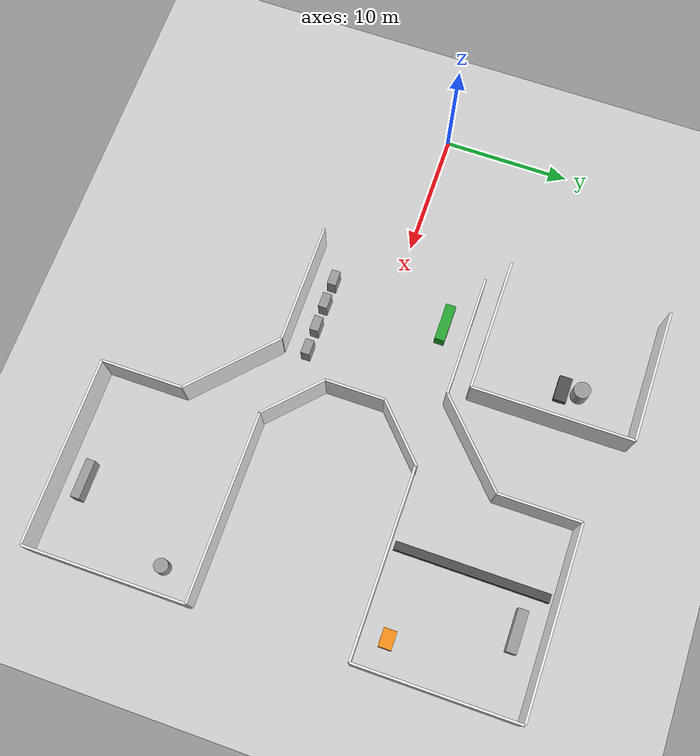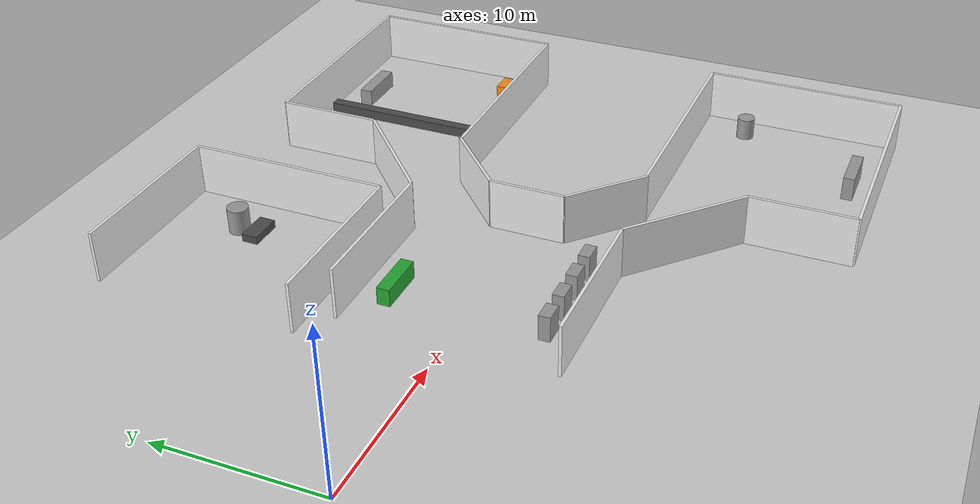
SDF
<sdf version="1.6">
 <world name="default">
  <include><uri>model://sun</uri></include>
  <include><uri>model://ground_plane</uri></include>
  <model name="wall_012">
   <static>true</static>
   <pose>15.250000 20.500000 1.600000 0 0 0.000000</pose>
   <link name="link">
    <collision name="collision">
     <geometry><box><size>10.500000 0.180000 3.200000</size></box></geometry>
    </collision>
    <visual name="visual">
     <geometry><box><size>10.500000 0.180000 3.200000</size></box></geometry>
     <material>
      <script><uri>file://media/materials/scripts/gazebo.material</uri><name>Gazebo/White</name></script>
     </material>
    </visual>
   </link>
  </model>
  <model name="wall_013">
   <static>true</static>
   <pose>20.500000 14.250000 1.600000 0 0 -1.570796</pose>
   <link name="link">
    <collision name="collision">
     <geometry><box><size>12.500000 0.180000 3.200000</size></box></geometry>
    </collision>
    <visual name="visual">
     <geometry><box><size>12.500000 0.180000 3.200000</size></box></geometry>
     <material>
      <script><uri>file://media/materials/scripts/gazebo.material</uri><name>Gazebo/White</name></script>
     </material>
    </visual>
   </link>
  </model>
  <model name="wall_014">
   <static>true</static>
   <pose>15.250000 8.000000 1.600000 0 0 3.141593</pose>
   <link name="link">
    <collision name="collision">
     <geometry><box><size>10.500000 0.180000 3.200000</size></box></geometry>
    </collision>
    <visual name="visual">
     <geometry><box><size>10.500000 0.180000 3.200000</size></box></geometry>
     <material>
      <script><uri>file://media/materials/scripts/gazebo.material</uri><name>Gazebo/White</name></script>
     </material>
    </visual>
   </link>
  </model>
  <model name="wall_020">
   <static>true</static>
   <pose>16.758341 6.500000 1.600000 0 0 0.000000</pose>
   <link name="link">
    <collision name="collision">
     <geometry><box><size>9.516682 0.180000 3.200000</size></box></geometry>
    </collision>
    <visual name="visual">
     <geometry><box><size>9.516682 0.180000 3.200000</size></box></geometry>
     <material>
      <script><uri>file://media/materials/scripts/gazebo.material</uri><name>Gazebo/White</name></script>
     </material>
    </visual>
   </link>
  </model>
  <model name="wall_021">
   <static>true</static>
   <pose>24.506006 9.302491 1.600000 0 0 0.753151</pose>
   <link name="link">
    <collision name="collision">
     <geometry><box><size>8.195123 0.180000 3.200000</size></box></geometry>
    </collision>
    <visual name="visual">
     <geometry><box><size>8.195123 0.180000 3.200000</size></box></geometry>
     <material>
      <script><uri>file://media/materials/scripts/gazebo.material</uri><name>Gazebo/White</name></script>
     </material>
    </visual>
   </link>
  </model>
  <model name="wall_022">
   <static>true</static>
   <pose>27.497665 12.102491 1.600000 0 0 -0.817645</pose>
   <link name="link">
    <collision name="collision">
     <geometry><box><size>0.006829 0.180000 3.200000</size></box></geometry>
    </collision>
    <visual name="visual">
     <geometry><box><size>0.006829 0.180000 3.200000</size></box></geometry>
     <material>
      <script><uri>file://media/materials/scripts/gazebo.material</uri><name>Gazebo/White</name></script>
     </material>
    </visual>
   </link>
  </model>
  <model name="wall_023">
   <static>true</static>
   <pose>27.500000 15.300000 1.600000 0 0 1.570796</pose>
   <link name="link">
    <collision name="collision">
     <geometry><box><size>6.400000 0.180000 3.200000</size></box></geometry>
    </collision>
    <visual name="visual">
     <geometry><box><size>6.400000 0.180000 3.200000</size></box></geometry>
     <material>
      <script><uri>file://media/materials/scripts/gazebo.material</uri><name>Gazebo/White</name></script>
     </material>
    </visual>
   </link>
  </model>
  <model name="wall_024">
   <static>true</static>
   <pose>34.750000 18.500000 1.600000 0 0 0.000000</pose>
   <link name="link">
    <collision name="collision">
     <geometry><box><size>14.500000 0.180000 3.200000</size></box></geometry>
    </collision>
    <visual name="visual">
     <geometry><box><size>14.500000 0.180000 3.200000</size></box></geometry>
     <material>
      <script><uri>file://media/materials/scripts/gazebo.material</uri><name>Gazebo/White</name></script>
     </material>
    </visual>
   </link>
  </model>
  <model name="wall_025">
   <static>true</static>
   <pose>42.000000 12.250000 1.600000 0 0 -1.570796</pose>
   <link name="link">
    <collision name="collision">
     <geometry><box><size>12.500000 0.180000 3.200000</size></box></geometry>
    </collision>
    <visual name="visual">
     <geometry><box><size>12.500000 0.180000 3.200000</size></box></geometry>
     <material>
      <script><uri>file://media/materials/scripts/gazebo.material</uri><name>Gazebo/White</name></script>
     </material>
    </visual>
   </link>
  </model>
  <model name="wall_026">
   <static>true</static>
   <pose>34.750000 6.000000 1.600000 0 0 3.141593</pose>
   <link name="link">
    <collision name="collision">
     <geometry><box><size>14.500000 0.180000 3.200000</size></box></geometry>
    </collision>
    <visual name="visual">
     <geometry><box><size>14.500000 0.180000 3.200000</size></box></geometry>
     <material>
      <script><uri>file://media/materials/scripts/gazebo.material</uri><name>Gazebo/White</name></script>
     </material>
    </visual>
   </link>
  </model>
  <model name="wall_027">
   <static>true</static>
   <pose>27.500000 6.039070 1.600000 0 0 1.570796</pose>
   <link name="link">
    <collision name="collision">
     <geometry><box><size>0.078140 0.180000 3.200000</size></box></geometry>
    </collision>
    <visual name="visual">
     <geometry><box><size>0.078140 0.180000 3.200000</size></box></geometry>
     <material>
      <script><uri>file://media/materials/scripts/gazebo.material</uri><name>Gazebo/White</name></script>
     </material>
    </visual>
   </link>
  </model>
  <model name="wall_028">
   <static>true</static>
   <pose>25.500000 4.203140 1.600000 0 0 -2.388441</pose>
   <link name="link">
    <collision name="collision">
     <geometry><box><size>5.482928 0.180000 3.200000</size></box></geometry>
    </collision>
    <visual name="visual">
     <geometry><box><size>5.482928 0.180000 3.200000</size></box></geometry>
     <material>
      <script><uri>file://media/materials/scripts/gazebo.material</uri><name>Gazebo/White</name></script>
     </material>
    </visual>
   </link>
  </model>
  <model name="wall_029">
   <static>true</static>
   <pose>23.500000 0.000000 1.600000 0 0 -1.570796</pose>
   <link name="link">
    <collision name="collision">
     <geometry><box><size>4.656279 0.180000 3.200000</size></box></geometry>
    </collision>
    <visual name="visual">
     <geometry><box><size>4.656279 0.180000 3.200000</size></box></geometry>
     <material>
      <script><uri>file://media/materials/scripts/gazebo.material</uri><name>Gazebo/White</name></script>
     </material>
    </visual>
   </link>
  </model>
  <model name="wall_030">
   <static>true</static>
   <pose>25.500000 -4.203140 1.600000 0 0 -0.753151</pose>
   <link name="link">
    <collision name="collision">
     <geometry><box><size>5.482928 0.180000 3.200000</size></box></geometry>
    </collision>
    <visual name="visual">
     <geometry><box><size>5.482928 0.180000 3.200000</size></box></geometry>
     <material>
      <script><uri>file://media/materials/scripts/gazebo.material</uri><name>Gazebo/White</name></script>
     </material>
    </visual>
   </link>
  </model>
  <model name="wall_031">
   <static>true</static>
   <pose>27.500000 -6.039070 1.600000 0 0 1.570796</pose>
   <link name="link">
    <collision name="collision">
     <geometry><box><size>0.078140 0.180000 3.200000</size></box></geometry>
    </collision>
    <visual name="visual">
     <geometry><box><size>0.078140 0.180000 3.200000</size></box></geometry>
     <material>
      <script><uri>file://media/materials/scripts/gazebo.material</uri><name>Gazebo/White</name></script>
     </material>
    </visual>
   </link>
  </model>
  <model name="wall_032">
   <static>true</static>
   <pose>34.750000 -6.000000 1.600000 0 0 0.000000</pose>
   <link name="link">
    <collision name="collision">
     <geometry><box><size>14.500000 0.180000 3.200000</size></box></geometry>
    </collision>
    <visual name="visual">
     <geometry><box><size>14.500000 0.180000 3.200000</size></box></geometry>
     <material>
      <script><uri>file://media/materials/scripts/gazebo.material</uri><name>Gazebo/White</name></script>
     </material>
    </visual>
   </link>
  </model>
  <model name="wall_033">
   <static>true</static>
   <pose>42.000000 -12.250000 1.600000 0 0 -1.570796</pose>
   <link name="link">
    <collision name="collision">
     <geometry><box><size>12.500000 0.180000 3.200000</size></box></geometry>
    </collision>
    <visual name="visual">
     <geometry><box><size>12.500000 0.180000 3.200000</size></box></geometry>
     <material>
      <script><uri>file://media/materials/scripts/gazebo.material</uri><name>Gazebo/White</name></script>
     </material>
    </visual>
   </link>
  </model>
  <model name="wall_034">
   <static>true</static>
   <pose>34.750000 -18.500000 1.600000 0 0 3.141593</pose>
   <link name="link">
    <collision name="collision">
     <geometry><box><size>14.500000 0.180000 3.200000</size></box></geometry>
    </collision>
    <visual name="visual">
     <geometry><box><size>14.500000 0.180000 3.200000</size></box></geometry>
     <material>
      <script><uri>file://media/materials/scripts/gazebo.material</uri><name>Gazebo/White</name></script>
     </material>
    </visual>
   </link>
  </model>
  <model name="wall_035">
   <static>true</static>
   <pose>27.500000 -15.300000 1.600000 0 0 1.570796</pose>
   <link name="link">
    <collision name="collision">
     <geometry><box><size>6.400000 0.180000 3.200000</size></box></geometry>
    </collision>
    <visual name="visual">
     <geometry><box><size>6.400000 0.180000 3.200000</size></box></geometry>
     <material>
      <script><uri>file://media/materials/scripts/gazebo.material</uri><name>Gazebo/White</name></script>
     </material>
    </visual>
   </link>
  </model>
  <model name="wall_036">
   <static>true</static>
   <pose>27.497665 -12.102491 1.600000 0 0 -2.323948</pose>
   <link name="link">
    <collision name="collision">
     <geometry><box><size>0.006829 0.180000 3.200000</size></box></geometry>
    </collision>
    <visual name="visual">
     <geometry><box><size>0.006829 0.180000 3.200000</size></box></geometry>
     <material>
      <script><uri>file://media/materials/scripts/gazebo.material</uri><name>Gazebo/White</name></script>
     </material>
    </visual>
   </link>
  </model>
  <model name="wall_037">
   <static>true</static>
   <pose>24.506006 -9.302491 1.600000 0 0 2.388441</pose>
   <link name="link">
    <collision name="collision">
     <geometry><box><size>8.195123 0.180000 3.200000</size></box></geometry>
    </collision>
    <visual name="visual">
     <geometry><box><size>8.195123 0.180000 3.200000</size></box></geometry>
     <material>
      <script><uri>file://media/materials/scripts/gazebo.material</uri><name>Gazebo/White</name></script>
     </material>
    </visual>
   </link>
  </model>
  <model name="wall_038">
   <static>true</static>
   <pose>16.758341 -6.500000 1.600000 0 0 3.141593</pose>
   <link name="link">
    <collision name="collision">
     <geometry><box><size>9.516682 0.180000 3.200000</size></box></geometry>
    </collision>
    <visual name="visual">
     <geometry><box><size>9.516682 0.180000 3.200000</size></box></geometry>
     <material>
      <script><uri>file://media/materials/scripts/gazebo.material</uri><name>Gazebo/White</name></script>
     </material>
    </visual>
   </link>
  </model>
  <model name="B_pump_2">
   <static>true</static>
   <pose>17.500000 16.000000 0.800000 0 0 0</pose>
   <link name="link">
    <collision name="collision">
     <geometry><cylinder><radius>0.650000</radius><length>1.600000</length></cylinder></geometry>
    </collision>
    <visual name="visual">
     <geometry><cylinder><radius>0.650000</radius><length>1.600000</length></cylinder></geometry>
     <material>
      <script><uri>file://media/materials/scripts/gazebo.material</uri><name>Gazebo/Grey</name></script>
     </material>
    </visual>
   </link>
  </model>
  <model name="B_base_2">
   <static>true</static>
   <pose>17.500000 14.700000 0.250000 0 0 0.000000</pose>
   <link name="link">
    <collision name="collision">
     <geometry><box><size>2.000000 1.000000 0.500000</size></box></geometry>
    </collision>
    <visual name="visual">
     <geometry><box><size>2.000000 1.000000 0.500000</size></box></geometry>
     <material>
      <script><uri>file://media/materials/scripts/gazebo.material</uri><name>Gazebo/DarkGrey</name></script>
     </material>
    </visual>
   </link>
  </model>
  <model name="C_cabinet_0">
   <static>true</static>
   <pose>15.000000 -4.700000 0.800000 0 0 0.000000</pose>
   <link name="link">
    <collision name="collision">
     <geometry><box><size>1.200000 0.700000 1.600000</size></box></geometry>
    </collision>
    <visual name="visual">
     <geometry><box><size>1.200000 0.700000 1.600000</size></box></geometry>
     <material>
      <script><uri>file://media/materials/scripts/gazebo.material</uri><name>Gazebo/Grey</name></script>
     </material>
    </visual>
   </link>
  </model>
  <model name="C_cabinet_1">
   <static>true</static>
   <pose>17.000000 -4.700000 0.800000 0 0 0.000000</pose>
   <link name="link">
    <collision name="collision">
     <geometry><box><size>1.200000 0.700000 1.600000</size></box></geometry>
    </collision>
    <visual name="visual">
     <geometry><box><size>1.200000 0.700000 1.600000</size></box></geometry>
     <material>
      <script><uri>file://media/materials/scripts/gazebo.material</uri><name>Gazebo/Grey</name></script>
     </material>
    </visual>
   </link>
  </model>
  <model name="C_cabinet_2">
   <static>true</static>
   <pose>19.000000 -4.700000 0.800000 0 0 0.000000</pose>
   <link name="link">
    <collision name="collision">
     <geometry><box><size>1.200000 0.700000 1.600000</size></box></geometry>
    </collision>
    <visual name="visual">
     <geometry><box><size>1.200000 0.700000 1.600000</size></box></geometry>
     <material>
      <script><uri>file://media/materials/scripts/gazebo.material</uri><name>Gazebo/Grey</name></script>
     </material>
    </visual>
   </link>
  </model>
  <model name="C_cabinet_3">
   <static>true</static>
   <pose>21.000000 -4.700000 0.800000 0 0 0.000000</pose>
   <link name="link">
    <collision name="collision">
     <geometry><box><size>1.200000 0.700000 1.600000</size></box></geometry>
    </collision>
    <visual name="visual">
     <geometry><box><size>1.200000 0.700000 1.600000</size></box></geometry>
     <material>
      <script><uri>file://media/materials/scripts/gazebo.material</uri><name>Gazebo/Grey</name></script>
     </material>
    </visual>
   </link>
  </model>
  <model name="C_workbench">
   <static>true</static>
   <pose>15.500000 4.600000 0.550000 0 0 0.000000</pose>
   <link name="link">
    <collision name="collision">
     <geometry><box><size>3.000000 0.800000 1.100000</size></box></geometry>
    </collision>
    <visual name="visual">
     <geometry><box><size>3.000000 0.800000 1.100000</size></box></geometry>
     <material>
      <script><uri>file://media/materials/scripts/gazebo.material</uri><name>Gazebo/Green</name></script>
     </material>
    </visual>
   </link>
  </model>
  <model name="D_bench">
   <static>true</static>
   <pose>36.000000 16.500000 0.550000 0 0 0.000000</pose>
   <link name="link">
    <collision name="collision">
     <geometry><box><size>3.200000 0.800000 1.100000</size></box></geometry>
    </collision>
    <visual name="visual">
     <geometry><box><size>3.200000 0.800000 1.100000</size></box></geometry>
     <material>
      <script><uri>file://media/materials/scripts/gazebo.material</uri><name>Gazebo/Grey</name></script>
     </material>
    </visual>
   </link>
  </model>
  <model name="D_crate">
   <static>true</static>
   <pose>39.500000 8.000000 0.450000 0 0 0.000000</pose>
   <link name="link">
    <collision name="collision">
     <geometry><box><size>1.400000 1.000000 0.900000</size></box></geometry>
    </collision>
    <visual name="visual">
     <geometry><box><size>1.400000 1.000000 0.900000</size></box></geometry>
     <material>
      <script><uri>file://media/materials/scripts/gazebo.material</uri><name>Gazebo/Orange</name></script>
     </material>
    </visual>
   </link>
  </model>
  <model name="E_shelf">
   <static>true</static>
   <pose>36.000000 -16.800000 0.750000 0 0 0.000000</pose>
   <link name="link">
    <collision name="collision">
     <geometry><box><size>3.000000 0.700000 1.500000</size></box></geometry>
    </collision>
    <visual name="visual">
     <geometry><box><size>3.000000 0.700000 1.500000</size></box></geometry>
     <material>
      <script><uri>file://media/materials/scripts/gazebo.material</uri><name>Gazebo/Grey</name></script>
     </material>
    </visual>
   </link>
  </model>
  <model name="E_tank">
   <static>true</static>
   <pose>40.000000 -9.000000 0.700000 0 0 0</pose>
   <link name="link">
    <collision name="collision">
     <geometry><cylinder><radius>0.550000</radius><length>1.400000</length></cylinder></geometry>
    </collision>
    <visual name="visual">
     <geometry><cylinder><radius>0.550000</radius><length>1.400000</length></cylinder></geometry>
     <material>
      <script><uri>file://media/materials/scripts/gazebo.material</uri><name>Gazebo/Grey</name></script>
     </material>
    </visual>
   </link>
  </model>
  <model name="D_low_ground_barrier">
   <static>true</static>
   <pose>33.000000 12.250000 0.325000 0 0 0.000000</pose>
   <link name="link">
    <collision name="collision">
     <geometry><box><size>0.650000 11.800000 0.650000</size></box></geometry>
    </collision>
    <visual name="visual">
     <geometry><box><size>0.650000 11.800000 0.650000</size></box></geometry>
     <material>
      <script><uri>file://media/materials/scripts/gazebo.material</uri><name>Gazebo/DarkGrey</name></script>
     </material>
    </visual>
   </link>
  </model>
 </world>
</sdf>
